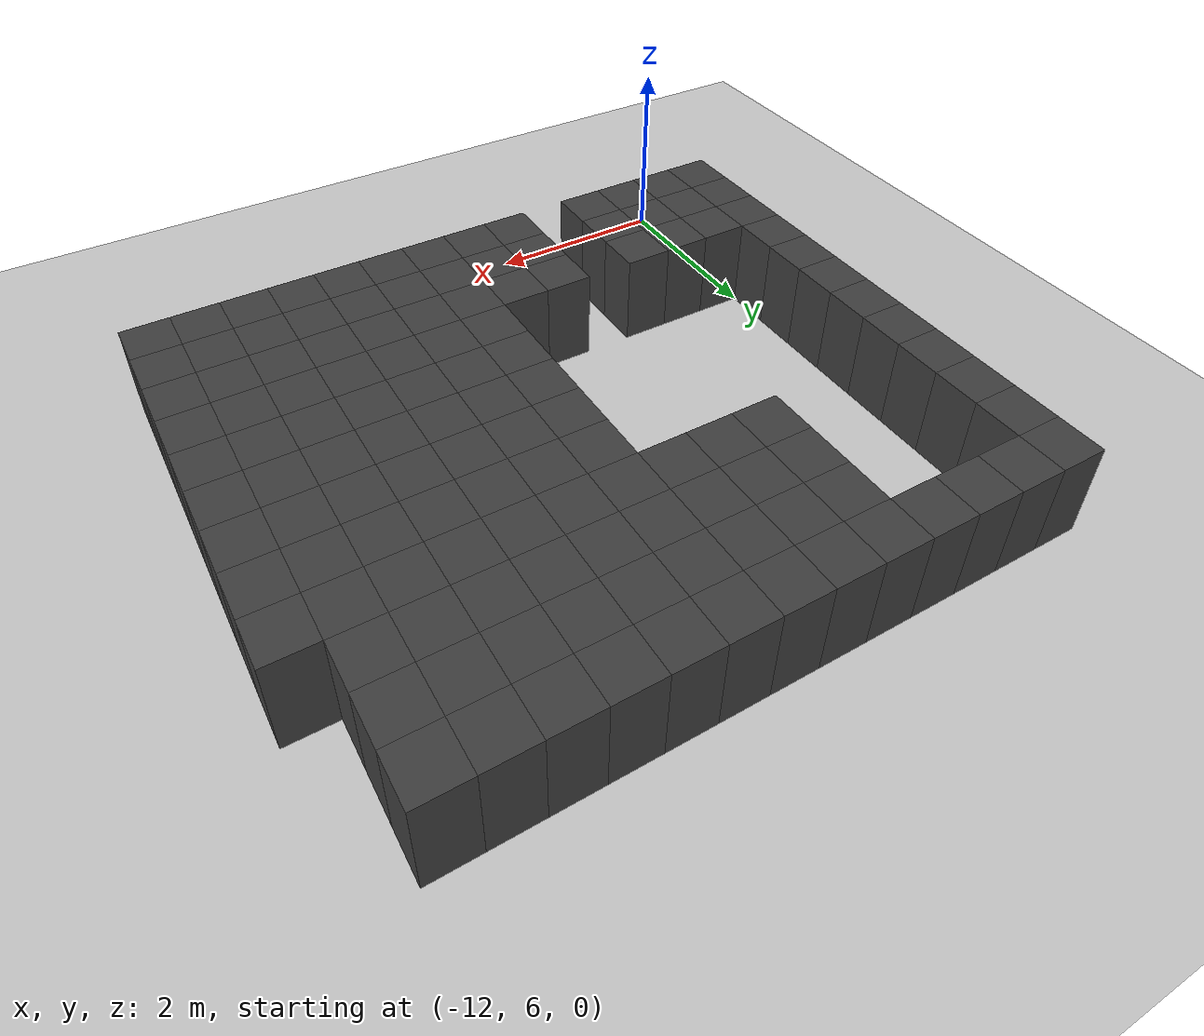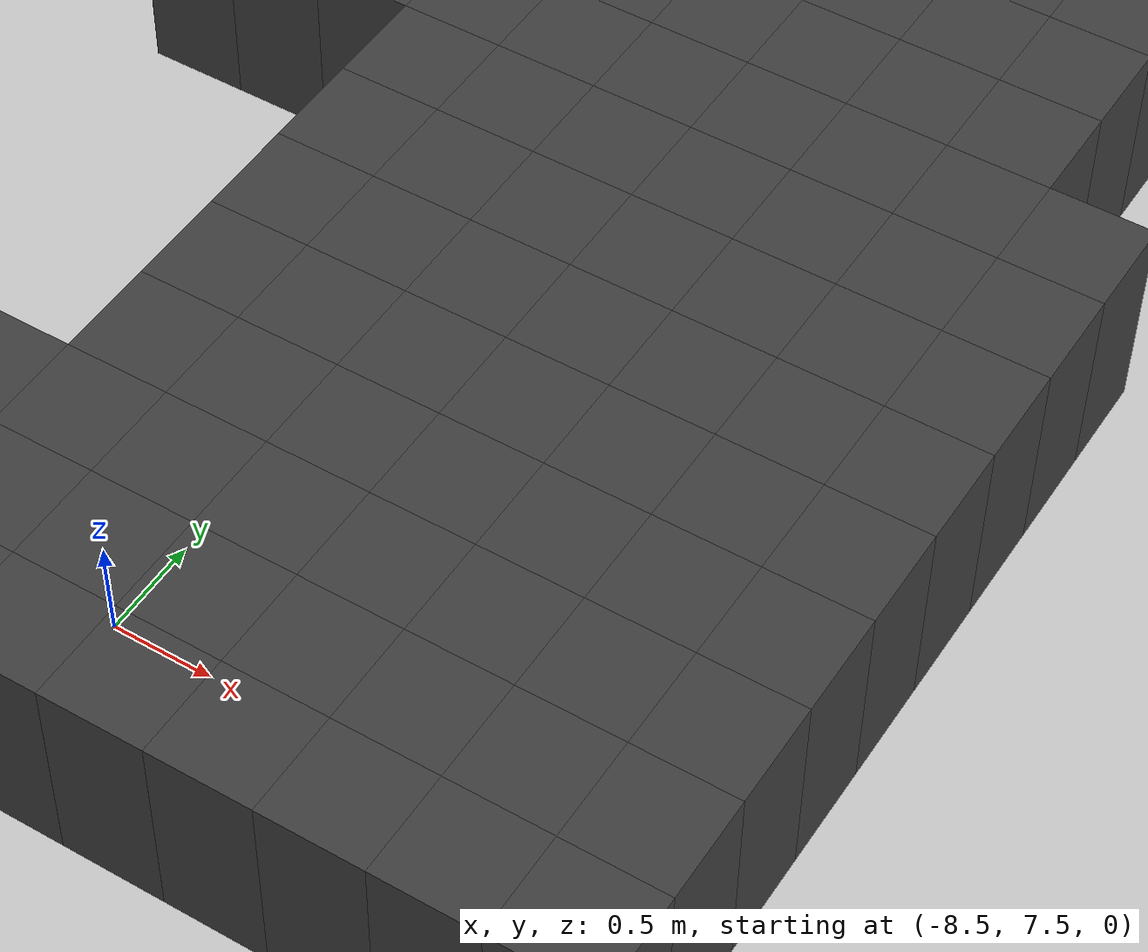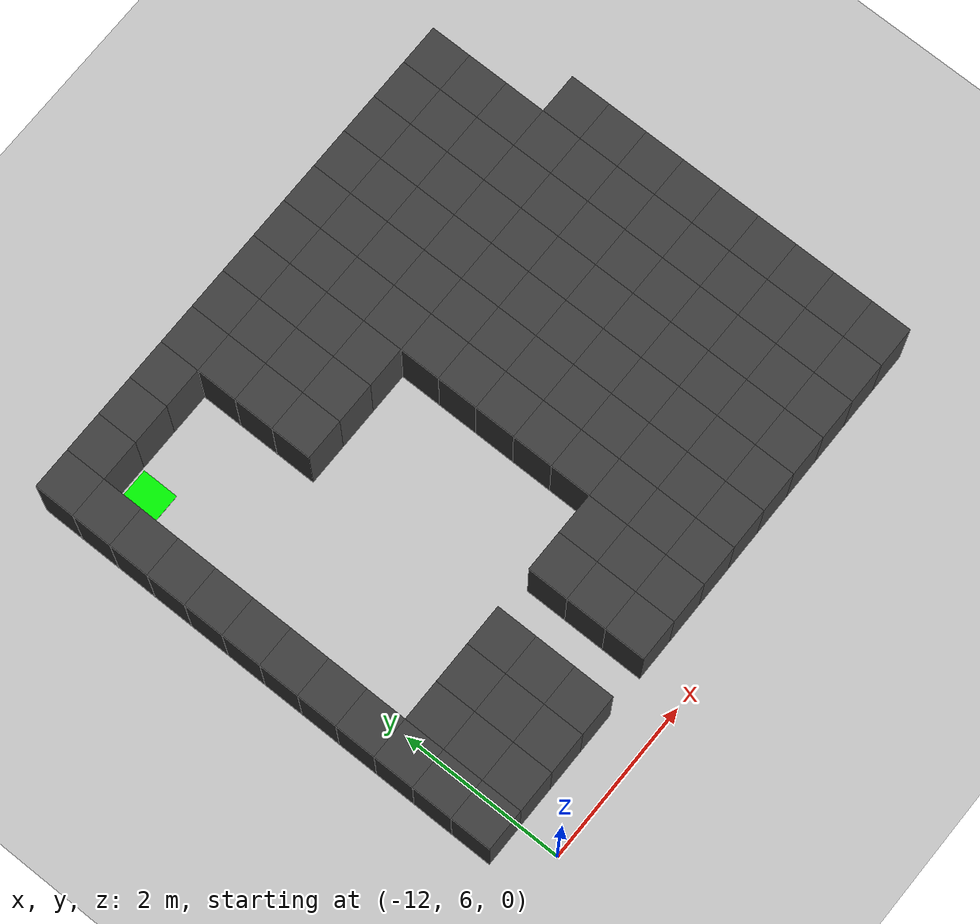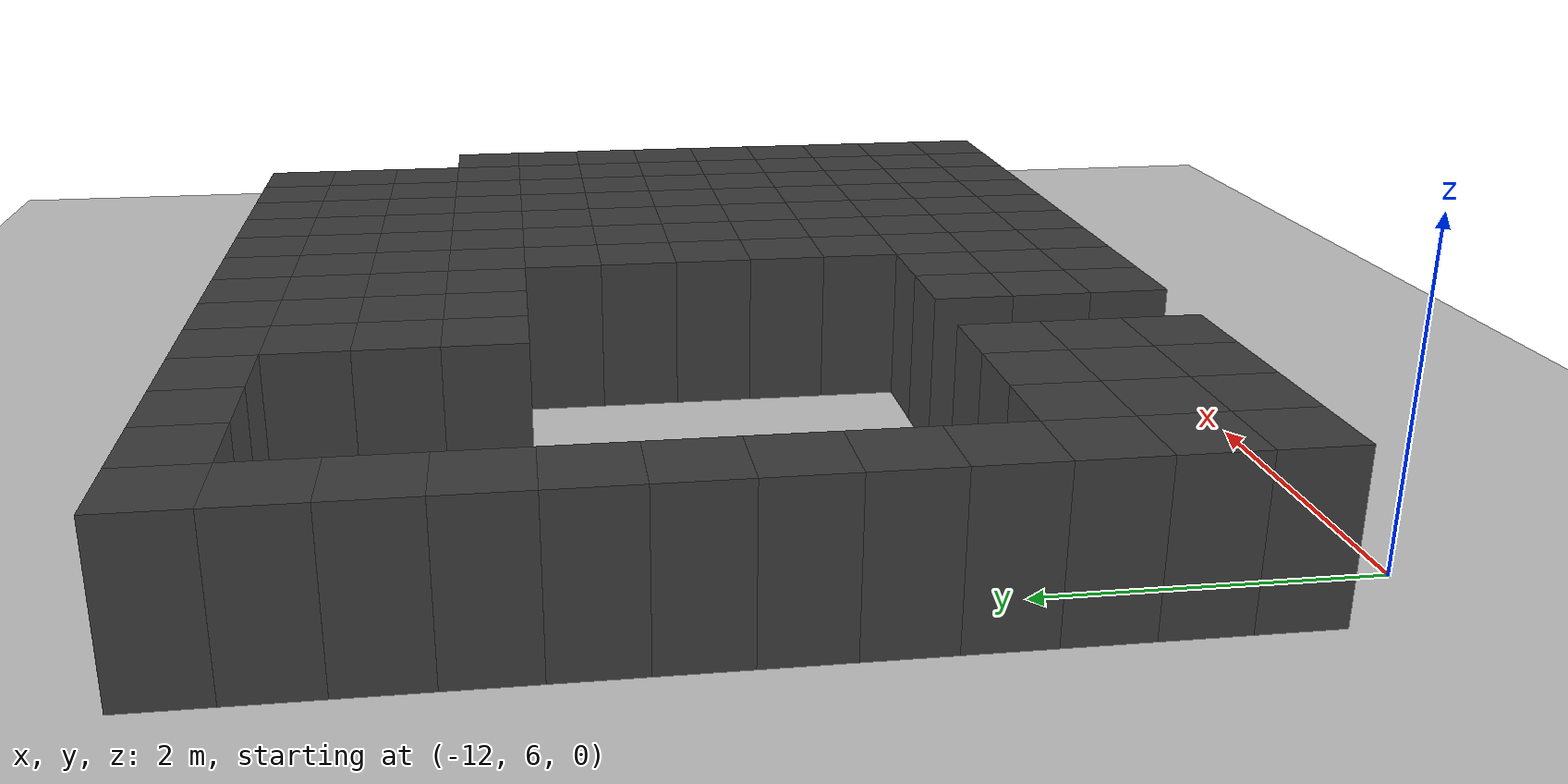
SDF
<sdf version="1.7">
 <world name="map_13364">
  <model name="ground_plane">
   <static>true</static>
   <link name="link">
    <collision name="collision">
     <geometry><plane><normal>0 0 1</normal><size>200 200</size></plane></geometry>
    </collision>
    <visual name="visual">
     <geometry><plane><normal>0 0 1</normal><size>200 200</size></plane></geometry>
     <material><ambient>0.8 0.8 0.8 1</ambient><diffuse>0.8 0.8 0.8 1</diffuse></material>
    </visual>
   </link>
  </model>
  <model name="maze_environment">
   <static>true</static>
   <link name="wall_0">
    <pose>-12.250 12.250 0.500 0 0 0</pose>
    <collision name="col"><geometry><box><size>0.5 0.5 1.0</size></box></geometry></collision>
    <visual name="vis">
     <geometry><box><size>0.5 0.5 1.0</size></box></geometry>
     <material><ambient>0.15 0.15 0.15 1</ambient><diffuse>0.25 0.25 0.25 1</diffuse></material>
    </visual>
   </link>
   <link name="wall_1">
    <pose>-11.750 12.250 0.500 0 0 0</pose>
    <collision name="col"><geometry><box><size>0.5 0.5 1.0</size></box></geometry></collision>
    <visual name="vis">
     <geometry><box><size>0.5 0.5 1.0</size></box></geometry>
     <material><ambient>0.15 0.15 0.15 1</ambient><diffuse>0.25 0.25 0.25 1</diffuse></material>
    </visual>
   </link>
   <link name="wall_2">
    <pose>-11.250 12.250 0.500 0 0 0</pose>
    <collision name="col"><geometry><box><size>0.5 0.5 1.0</size></box></geometry></collision>
    <visual name="vis">
     <geometry><box><size>0.5 0.5 1.0</size></box></geometry>
     <material><ambient>0.15 0.15 0.15 1</ambient><diffuse>0.25 0.25 0.25 1</diffuse></material>
    </visual>
   </link>
   <link name="wall_3">
    <pose>-10.750 12.250 0.500 0 0 0</pose>
    <collision name="col"><geometry><box><size>0.5 0.5 1.0</size></box></geometry></collision>
    <visual name="vis">
     <geometry><box><size>0.5 0.5 1.0</size></box></geometry>
     <material><ambient>0.15 0.15 0.15 1</ambient><diffuse>0.25 0.25 0.25 1</diffuse></material>
    </visual>
   </link>
   <link name="wall_4">
    <pose>-10.250 12.250 0.500 0 0 0</pose>
    <collision name="col"><geometry><box><size>0.5 0.5 1.0</size></box></geometry></collision>
    <visual name="vis">
     <geometry><box><size>0.5 0.5 1.0</size></box></geometry>
     <material><ambient>0.15 0.15 0.15 1</ambient><diffuse>0.25 0.25 0.25 1</diffuse></material>
    </visual>
   </link>
   <link name="wall_5">
    <pose>-9.750 12.250 0.500 0 0 0</pose>
    <collision name="col"><geometry><box><size>0.5 0.5 1.0</size></box></geometry></collision>
    <visual name="vis">
     <geometry><box><size>0.5 0.5 1.0</size></box></geometry>
     <material><ambient>0.15 0.15 0.15 1</ambient><diffuse>0.25 0.25 0.25 1</diffuse></material>
    </visual>
   </link>
   <link name="wall_6">
    <pose>-9.250 12.250 0.500 0 0 0</pose>
    <collision name="col"><geometry><box><size>0.5 0.5 1.0</size></box></geometry></collision>
    <visual name="vis">
     <geometry><box><size>0.5 0.5 1.0</size></box></geometry>
     <material><ambient>0.15 0.15 0.15 1</ambient><diffuse>0.25 0.25 0.25 1</diffuse></material>
    </visual>
   </link>
   <link name="wall_7">
    <pose>-8.750 12.250 0.500 0 0 0</pose>
    <collision name="col"><geometry><box><size>0.5 0.5 1.0</size></box></geometry></collision>
    <visual name="vis">
     <geometry><box><size>0.5 0.5 1.0</size></box></geometry>
     <material><ambient>0.15 0.15 0.15 1</ambient><diffuse>0.25 0.25 0.25 1</diffuse></material>
    </visual>
   </link>
   <link name="wall_8">
    <pose>-8.250 12.250 0.500 0 0 0</pose>
    <collision name="col"><geometry><box><size>0.5 0.5 1.0</size></box></geometry></collision>
    <visual name="vis">
     <geometry><box><size>0.5 0.5 1.0</size></box></geometry>
     <material><ambient>0.15 0.15 0.15 1</ambient><diffuse>0.25 0.25 0.25 1</diffuse></material>
    </visual>
   </link>
   <link name="wall_9">
    <pose>-7.750 12.250 0.500 0 0 0</pose>
    <collision name="col"><geometry><box><size>0.5 0.5 1.0</size></box></geometry></collision>
    <visual name="vis">
     <geometry><box><size>0.5 0.5 1.0</size></box></geometry>
     <material><ambient>0.15 0.15 0.15 1</ambient><diffuse>0.25 0.25 0.25 1</diffuse></material>
    </visual>
   </link>
   <link name="wall_10">
    <pose>-7.250 12.250 0.500 0 0 0</pose>
    <collision name="col"><geometry><box><size>0.5 0.5 1.0</size></box></geometry></collision>
    <visual name="vis">
     <geometry><box><size>0.5 0.5 1.0</size></box></geometry>
     <material><ambient>0.15 0.15 0.15 1</ambient><diffuse>0.25 0.25 0.25 1</diffuse></material>
    </visual>
   </link>
   <link name="wall_11">
    <pose>-6.750 12.250 0.500 0 0 0</pose>
    <collision name="col"><geometry><box><size>0.5 0.5 1.0</size></box></geometry></collision>
    <visual name="vis">
     <geometry><box><size>0.5 0.5 1.0</size></box></geometry>
     <material><ambient>0.15 0.15 0.15 1</ambient><diffuse>0.25 0.25 0.25 1</diffuse></material>
    </visual>
   </link>
   <link name="wall_12">
    <pose>-6.250 12.250 0.500 0 0 0</pose>
    <collision name="col"><geometry><box><size>0.5 0.5 1.0</size></box></geometry></collision>
    <visual name="vis">
     <geometry><box><size>0.5 0.5 1.0</size></box></geometry>
     <material><ambient>0.15 0.15 0.15 1</ambient><diffuse>0.25 0.25 0.25 1</diffuse></material>
    </visual>
   </link>
   <link name="wall_50">
    <pose>-12.250 11.750 0.500 0 0 0</pose>
    <collision name="col"><geometry><box><size>0.5 0.5 1.0</size></box></geometry></collision>
    <visual name="vis">
     <geometry><box><size>0.5 0.5 1.0</size></box></geometry>
     <material><ambient>0.15 0.15 0.15 1</ambient><diffuse>0.25 0.25 0.25 1</diffuse></material>
    </visual>
   </link>
   <link name="wall_51">
    <pose>-10.250 11.750 0.500 0 0 0</pose>
    <collision name="col"><geometry><box><size>0.5 0.5 1.0</size></box></geometry></collision>
    <visual name="vis">
     <geometry><box><size>0.5 0.5 1.0</size></box></geometry>
     <material><ambient>0.15 0.15 0.15 1</ambient><diffuse>0.25 0.25 0.25 1</diffuse></material>
    </visual>
   </link>
   <link name="wall_52">
    <pose>-9.750 11.750 0.500 0 0 0</pose>
    <collision name="col"><geometry><box><size>0.5 0.5 1.0</size></box></geometry></collision>
    <visual name="vis">
     <geometry><box><size>0.5 0.5 1.0</size></box></geometry>
     <material><ambient>0.15 0.15 0.15 1</ambient><diffuse>0.25 0.25 0.25 1</diffuse></material>
    </visual>
   </link>
   <link name="wall_53">
    <pose>-9.250 11.750 0.500 0 0 0</pose>
    <collision name="col"><geometry><box><size>0.5 0.5 1.0</size></box></geometry></collision>
    <visual name="vis">
     <geometry><box><size>0.5 0.5 1.0</size></box></geometry>
     <material><ambient>0.15 0.15 0.15 1</ambient><diffuse>0.25 0.25 0.25 1</diffuse></material>
    </visual>
   </link>
   <link name="wall_54">
    <pose>-8.750 11.750 0.500 0 0 0</pose>
    <collision name="col"><geometry><box><size>0.5 0.5 1.0</size></box></geometry></collision>
    <visual name="vis">
     <geometry><box><size>0.5 0.5 1.0</size></box></geometry>
     <material><ambient>0.15 0.15 0.15 1</ambient><diffuse>0.25 0.25 0.25 1</diffuse></material>
    </visual>
   </link>
   <link name="wall_55">
    <pose>-8.250 11.750 0.500 0 0 0</pose>
    <collision name="col"><geometry><box><size>0.5 0.5 1.0</size></box></geometry></collision>
    <visual name="vis">
     <geometry><box><size>0.5 0.5 1.0</size></box></geometry>
     <material><ambient>0.15 0.15 0.15 1</ambient><diffuse>0.25 0.25 0.25 1</diffuse></material>
    </visual>
   </link>
   <link name="wall_56">
    <pose>-7.750 11.750 0.500 0 0 0</pose>
    <collision name="col"><geometry><box><size>0.5 0.5 1.0</size></box></geometry></collision>
    <visual name="vis">
     <geometry><box><size>0.5 0.5 1.0</size></box></geometry>
     <material><ambient>0.15 0.15 0.15 1</ambient><diffuse>0.25 0.25 0.25 1</diffuse></material>
    </visual>
   </link>
   <link name="wall_57">
    <pose>-7.250 11.750 0.500 0 0 0</pose>
    <collision name="col"><geometry><box><size>0.5 0.5 1.0</size></box></geometry></collision>
    <visual name="vis">
     <geometry><box><size>0.5 0.5 1.0</size></box></geometry>
     <material><ambient>0.15 0.15 0.15 1</ambient><diffuse>0.25 0.25 0.25 1</diffuse></material>
    </visual>
   </link>
   <link name="wall_58">
    <pose>-6.750 11.750 0.500 0 0 0</pose>
    <collision name="col"><geometry><box><size>0.5 0.5 1.0</size></box></geometry></collision>
    <visual name="vis">
     <geometry><box><size>0.5 0.5 1.0</size></box></geometry>
     <material><ambient>0.15 0.15 0.15 1</ambient><diffuse>0.25 0.25 0.25 1</diffuse></material>
    </visual>
   </link>
   <link name="wall_59">
    <pose>-6.250 11.750 0.500 0 0 0</pose>
    <collision name="col"><geometry><box><size>0.5 0.5 1.0</size></box></geometry></collision>
    <visual name="vis">
     <geometry><box><size>0.5 0.5 1.0</size></box></geometry>
     <material><ambient>0.15 0.15 0.15 1</ambient><diffuse>0.25 0.25 0.25 1</diffuse></material>
    </visual>
   </link>
   <link name="wall_97">
    <pose>-12.250 11.250 0.500 0 0 0</pose>
    <collision name="col"><geometry><box><size>0.5 0.5 1.0</size></box></geometry></collision>
    <visual name="vis">
     <geometry><box><size>0.5 0.5 1.0</size></box></geometry>
     <material><ambient>0.15 0.15 0.15 1</ambient><diffuse>0.25 0.25 0.25 1</diffuse></material>
    </visual>
   </link>
   <link name="wall_98">
    <pose>-10.250 11.250 0.500 0 0 0</pose>
    <collision name="col"><geometry><box><size>0.5 0.5 1.0</size></box></geometry></collision>
    <visual name="vis">
     <geometry><box><size>0.5 0.5 1.0</size></box></geometry>
     <material><ambient>0.15 0.15 0.15 1</ambient><diffuse>0.25 0.25 0.25 1</diffuse></material>
    </visual>
   </link>
   <link name="wall_99">
    <pose>-9.750 11.250 0.500 0 0 0</pose>
    <collision name="col"><geometry><box><size>0.5 0.5 1.0</size></box></geometry></collision>
    <visual name="vis">
     <geometry><box><size>0.5 0.5 1.0</size></box></geometry>
     <material><ambient>0.15 0.15 0.15 1</ambient><diffuse>0.25 0.25 0.25 1</diffuse></material>
    </visual>
   </link>
   <link name="wall_100">
    <pose>-9.250 11.250 0.500 0 0 0</pose>
    <collision name="col"><geometry><box><size>0.5 0.5 1.0</size></box></geometry></collision>
    <visual name="vis">
     <geometry><box><size>0.5 0.5 1.0</size></box></geometry>
     <material><ambient>0.15 0.15 0.15 1</ambient><diffuse>0.25 0.25 0.25 1</diffuse></material>
    </visual>
   </link>
   <link name="wall_101">
    <pose>-8.750 11.250 0.500 0 0 0</pose>
    <collision name="col"><geometry><box><size>0.5 0.5 1.0</size></box></geometry></collision>
    <visual name="vis">
     <geometry><box><size>0.5 0.5 1.0</size></box></geometry>
     <material><ambient>0.15 0.15 0.15 1</ambient><diffuse>0.25 0.25 0.25 1</diffuse></material>
    </visual>
   </link>
   <link name="wall_102">
    <pose>-8.250 11.250 0.500 0 0 0</pose>
    <collision name="col"><geometry><box><size>0.5 0.5 1.0</size></box></geometry></collision>
    <visual name="vis">
     <geometry><box><size>0.5 0.5 1.0</size></box></geometry>
     <material><ambient>0.15 0.15 0.15 1</ambient><diffuse>0.25 0.25 0.25 1</diffuse></material>
    </visual>
   </link>
   <link name="wall_103">
    <pose>-7.750 11.250 0.500 0 0 0</pose>
    <collision name="col"><geometry><box><size>0.5 0.5 1.0</size></box></geometry></collision>
    <visual name="vis">
     <geometry><box><size>0.5 0.5 1.0</size></box></geometry>
     <material><ambient>0.15 0.15 0.15 1</ambient><diffuse>0.25 0.25 0.25 1</diffuse></material>
    </visual>
   </link>
   <link name="wall_104">
    <pose>-7.250 11.250 0.500 0 0 0</pose>
    <collision name="col"><geometry><box><size>0.5 0.5 1.0</size></box></geometry></collision>
    <visual name="vis">
     <geometry><box><size>0.5 0.5 1.0</size></box></geometry>
     <material><ambient>0.15 0.15 0.15 1</ambient><diffuse>0.25 0.25 0.25 1</diffuse></material>
    </visual>
   </link>
   <link name="wall_105">
    <pose>-6.750 11.250 0.500 0 0 0</pose>
    <collision name="col"><geometry><box><size>0.5 0.5 1.0</size></box></geometry></collision>
    <visual name="vis">
     <geometry><box><size>0.5 0.5 1.0</size></box></geometry>
     <material><ambient>0.15 0.15 0.15 1</ambient><diffuse>0.25 0.25 0.25 1</diffuse></material>
    </visual>
   </link>
   <link name="wall_106">
    <pose>-6.250 11.250 0.500 0 0 0</pose>
    <collision name="col"><geometry><box><size>0.5 0.5 1.0</size></box></geometry></collision>
    <visual name="vis">
     <geometry><box><size>0.5 0.5 1.0</size></box></geometry>
     <material><ambient>0.15 0.15 0.15 1</ambient><diffuse>0.25 0.25 0.25 1</diffuse></material>
    </visual>
   </link>
   <link name="wall_144">
    <pose>-12.250 10.750 0.500 0 0 0</pose>
    <collision name="col"><geometry><box><size>0.5 0.5 1.0</size></box></geometry></collision>
    <visual name="vis">
     <geometry><box><size>0.5 0.5 1.0</size></box></geometry>
     <material><ambient>0.15 0.15 0.15 1</ambient><diffuse>0.25 0.25 0.25 1</diffuse></material>
    </visual>
   </link>
   <link name="wall_145">
    <pose>-10.250 10.750 0.500 0 0 0</pose>
    <collision name="col"><geometry><box><size>0.5 0.5 1.0</size></box></geometry></collision>
    <visual name="vis">
     <geometry><box><size>0.5 0.5 1.0</size></box></geometry>
     <material><ambient>0.15 0.15 0.15 1</ambient><diffuse>0.25 0.25 0.25 1</diffuse></material>
    </visual>
   </link>
   <link name="wall_146">
    <pose>-9.750 10.750 0.500 0 0 0</pose>
    <collision name="col"><geometry><box><size>0.5 0.5 1.0</size></box></geometry></collision>
    <visual name="vis">
     <geometry><box><size>0.5 0.5 1.0</size></box></geometry>
     <material><ambient>0.15 0.15 0.15 1</ambient><diffuse>0.25 0.25 0.25 1</diffuse></material>
    </visual>
   </link>
   <link name="wall_147">
    <pose>-9.250 10.750 0.500 0 0 0</pose>
    <collision name="col"><geometry><box><size>0.5 0.5 1.0</size></box></geometry></collision>
    <visual name="vis">
     <geometry><box><size>0.5 0.5 1.0</size></box></geometry>
     <material><ambient>0.15 0.15 0.15 1</ambient><diffuse>0.25 0.25 0.25 1</diffuse></material>
    </visual>
   </link>
   <link name="wall_148">
    <pose>-8.750 10.750 0.500 0 0 0</pose>
    <collision name="col"><geometry><box><size>0.5 0.5 1.0</size></box></geometry></collision>
    <visual name="vis">
     <geometry><box><size>0.5 0.5 1.0</size></box></geometry>
     <material><ambient>0.15 0.15 0.15 1</ambient><diffuse>0.25 0.25 0.25 1</diffuse></material>
    </visual>
   </link>
   <link name="wall_149">
    <pose>-8.250 10.750 0.500 0 0 0</pose>
    <collision name="col"><geometry><box><size>0.5 0.5 1.0</size></box></geometry></collision>
    <visual name="vis">
     <geometry><box><size>0.5 0.5 1.0</size></box></geometry>
     <material><ambient>0.15 0.15 0.15 1</ambient><diffuse>0.25 0.25 0.25 1</diffuse></material>
    </visual>
   </link>
   <link name="wall_150">
    <pose>-7.750 10.750 0.500 0 0 0</pose>
    <collision name="col"><geometry><box><size>0.5 0.5 1.0</size></box></geometry></collision>
    <visual name="vis">
     <geometry><box><size>0.5 0.5 1.0</size></box></geometry>
     <material><ambient>0.15 0.15 0.15 1</ambient><diffuse>0.25 0.25 0.25 1</diffuse></material>
    </visual>
   </link>
   <link name="wall_151">
    <pose>-7.250 10.750 0.500 0 0 0</pose>
    <collision name="col"><geometry><box><size>0.5 0.5 1.0</size></box></geometry></collision>
    <visual name="vis">
     <geometry><box><size>0.5 0.5 1.0</size></box></geometry>
     <material><ambient>0.15 0.15 0.15 1</ambient><diffuse>0.25 0.25 0.25 1</diffuse></material>
    </visual>
   </link>
   <link name="wall_152">
    <pose>-6.750 10.750 0.500 0 0 0</pose>
    <collision name="col"><geometry><box><size>0.5 0.5 1.0</size></box></geometry></collision>
    <visual name="vis">
     <geometry><box><size>0.5 0.5 1.0</size></box></geometry>
     <material><ambient>0.15 0.15 0.15 1</ambient><diffuse>0.25 0.25 0.25 1</diffuse></material>
    </visual>
   </link>
   <link name="wall_153">
    <pose>-6.250 10.750 0.500 0 0 0</pose>
    <collision name="col"><geometry><box><size>0.5 0.5 1.0</size></box></geometry></collision>
    <visual name="vis">
     <geometry><box><size>0.5 0.5 1.0</size></box></geometry>
     <material><ambient>0.15 0.15 0.15 1</ambient><diffuse>0.25 0.25 0.25 1</diffuse></material>
    </visual>
   </link>
   <link name="wall_154">
    <pose>-5.750 10.750 0.500 0 0 0</pose>
    <collision name="col"><geometry><box><size>0.5 0.5 1.0</size></box></geometry></collision>
    <visual name="vis">
     <geometry><box><size>0.5 0.5 1.0</size></box></geometry>
     <material><ambient>0.15 0.15 0.15 1</ambient><diffuse>0.25 0.25 0.25 1</diffuse></material>
    </visual>
   </link>
   <link name="wall_191">
    <pose>-12.250 10.250 0.500 0 0 0</pose>
    <collision name="col"><geometry><box><size>0.5 0.5 1.0</size></box></geometry></collision>
    <visual name="vis">
     <geometry><box><size>0.5 0.5 1.0</size></box></geometry>
     <material><ambient>0.15 0.15 0.15 1</ambient><diffuse>0.25 0.25 0.25 1</diffuse></material>
    </visual>
   </link>
   <link name="wall_192">
    <pose>-8.750 10.250 0.500 0 0 0</pose>
    <collision name="col"><geometry><box><size>0.5 0.5 1.0</size></box></geometry></collision>
    <visual name="vis">
     <geometry><box><size>0.5 0.5 1.0</size></box></geometry>
     <material><ambient>0.15 0.15 0.15 1</ambient><diffuse>0.25 0.25 0.25 1</diffuse></material>
    </visual>
   </link>
   <link name="wall_193">
    <pose>-8.250 10.250 0.500 0 0 0</pose>
    <collision name="col"><geometry><box><size>0.5 0.5 1.0</size></box></geometry></collision>
    <visual name="vis">
     <geometry><box><size>0.5 0.5 1.0</size></box></geometry>
     <material><ambient>0.15 0.15 0.15 1</ambient><diffuse>0.25 0.25 0.25 1</diffuse></material>
    </visual>
   </link>
   <link name="wall_194">
    <pose>-7.750 10.250 0.500 0 0 0</pose>
    <collision name="col"><geometry><box><size>0.5 0.5 1.0</size></box></geometry></collision>
    <visual name="vis">
     <geometry><box><size>0.5 0.5 1.0</size></box></geometry>
     <material><ambient>0.15 0.15 0.15 1</ambient><diffuse>0.25 0.25 0.25 1</diffuse></material>
    </visual>
   </link>
   <link name="wall_195">
    <pose>-7.250 10.250 0.500 0 0 0</pose>
    <collision name="col"><geometry><box><size>0.5 0.5 1.0</size></box></geometry></collision>
    <visual name="vis">
     <geometry><box><size>0.5 0.5 1.0</size></box></geometry>
     <material><ambient>0.15 0.15 0.15 1</ambient><diffuse>0.25 0.25 0.25 1</diffuse></material>
    </visual>
   </link>
   <link name="wall_196">
    <pose>-6.750 10.250 0.500 0 0 0</pose>
    <collision name="col"><geometry><box><size>0.5 0.5 1.0</size></box></geometry></collision>
    <visual name="vis">
     <geometry><box><size>0.5 0.5 1.0</size></box></geometry>
     <material><ambient>0.15 0.15 0.15 1</ambient><diffuse>0.25 0.25 0.25 1</diffuse></material>
    </visual>
   </link>
   <link name="wall_197">
    <pose>-6.250 10.250 0.500 0 0 0</pose>
    <collision name="col"><geometry><box><size>0.5 0.5 1.0</size></box></geometry></collision>
    <visual name="vis">
     <geometry><box><size>0.5 0.5 1.0</size></box></geometry>
     <material><ambient>0.15 0.15 0.15 1</ambient><diffuse>0.25 0.25 0.25 1</diffuse></material>
    </visual>
   </link>
   <link name="wall_198">
    <pose>-5.750 10.250 0.500 0 0 0</pose>
    <collision name="col"><geometry><box><size>0.5 0.5 1.0</size></box></geometry></collision>
    <visual name="vis">
     <geometry><box><size>0.5 0.5 1.0</size></box></geometry>
     <material><ambient>0.15 0.15 0.15 1</ambient><diffuse>0.25 0.25 0.25 1</diffuse></material>
    </visual>
   </link>
   <link name="wall_235">
    <pose>-12.250 9.750 0.500 0 0 0</pose>
    <collision name="col"><geometry><box><size>0.5 0.5 1.0</size></box></geometry></collision>
    <visual name="vis">
     <geometry><box><size>0.5 0.5 1.0</size></box></geometry>
     <material><ambient>0.15 0.15 0.15 1</ambient><diffuse>0.25 0.25 0.25 1</diffuse></material>
    </visual>
   </link>
   <link name="wall_236">
    <pose>-8.750 9.750 0.500 0 0 0</pose>
    <collision name="col"><geometry><box><size>0.5 0.5 1.0</size></box></geometry></collision>
    <visual name="vis">
     <geometry><box><size>0.5 0.5 1.0</size></box></geometry>
     <material><ambient>0.15 0.15 0.15 1</ambient><diffuse>0.25 0.25 0.25 1</diffuse></material>
    </visual>
   </link>
   <link name="wall_237">
    <pose>-8.250 9.750 0.500 0 0 0</pose>
    <collision name="col"><geometry><box><size>0.5 0.5 1.0</size></box></geometry></collision>
    <visual name="vis">
     <geometry><box><size>0.5 0.5 1.0</size></box></geometry>
     <material><ambient>0.15 0.15 0.15 1</ambient><diffuse>0.25 0.25 0.25 1</diffuse></material>
    </visual>
   </link>
   <link name="wall_238">
    <pose>-7.750 9.750 0.500 0 0 0</pose>
    <collision name="col"><geometry><box><size>0.5 0.5 1.0</size></box></geometry></collision>
    <visual name="vis">
     <geometry><box><size>0.5 0.5 1.0</size></box></geometry>
     <material><ambient>0.15 0.15 0.15 1</ambient><diffuse>0.25 0.25 0.25 1</diffuse></material>
    </visual>
   </link>
   <link name="wall_239">
    <pose>-7.250 9.750 0.500 0 0 0</pose>
    <collision name="col"><geometry><box><size>0.5 0.5 1.0</size></box></geometry></collision>
    <visual name="vis">
     <geometry><box><size>0.5 0.5 1.0</size></box></geometry>
     <material><ambient>0.15 0.15 0.15 1</ambient><diffuse>0.25 0.25 0.25 1</diffuse></material>
    </visual>
   </link>
   <link name="wall_240">
    <pose>-6.750 9.750 0.500 0 0 0</pose>
    <collision name="col"><geometry><box><size>0.5 0.5 1.0</size></box></geometry></collision>
    <visual name="vis">
     <geometry><box><size>0.5 0.5 1.0</size></box></geometry>
     <material><ambient>0.15 0.15 0.15 1</ambient><diffuse>0.25 0.25 0.25 1</diffuse></material>
    </visual>
   </link>
   <link name="wall_241">
    <pose>-6.250 9.750 0.500 0 0 0</pose>
    <collision name="col"><geometry><box><size>0.5 0.5 1.0</size></box></geometry></collision>
    <visual name="vis">
     <geometry><box><size>0.5 0.5 1.0</size></box></geometry>
     <material><ambient>0.15 0.15 0.15 1</ambient><diffuse>0.25 0.25 0.25 1</diffuse></material>
    </visual>
   </link>
   <link name="wall_242">
    <pose>-5.750 9.750 0.500 0 0 0</pose>
    <collision name="col"><geometry><box><size>0.5 0.5 1.0</size></box></geometry></collision>
    <visual name="vis">
     <geometry><box><size>0.5 0.5 1.0</size></box></geometry>
     <material><ambient>0.15 0.15 0.15 1</ambient><diffuse>0.25 0.25 0.25 1</diffuse></material>
    </visual>
   </link>
   <link name="wall_279">
    <pose>-12.250 9.250 0.500 0 0 0</pose>
    <collision name="col"><geometry><box><size>0.5 0.5 1.0</size></box></geometry></collision>
    <visual name="vis">
     <geometry><box><size>0.5 0.5 1.0</size></box></geometry>
     <material><ambient>0.15 0.15 0.15 1</ambient><diffuse>0.25 0.25 0.25 1</diffuse></material>
    </visual>
   </link>
   <link name="wall_280">
    <pose>-8.750 9.250 0.500 0 0 0</pose>
    <collision name="col"><geometry><box><size>0.5 0.5 1.0</size></box></geometry></collision>
    <visual name="vis">
     <geometry><box><size>0.5 0.5 1.0</size></box></geometry>
     <material><ambient>0.15 0.15 0.15 1</ambient><diffuse>0.25 0.25 0.25 1</diffuse></material>
    </visual>
   </link>
   <link name="wall_281">
    <pose>-8.250 9.250 0.500 0 0 0</pose>
    <collision name="col"><geometry><box><size>0.5 0.5 1.0</size></box></geometry></collision>
    <visual name="vis">
     <geometry><box><size>0.5 0.5 1.0</size></box></geometry>
     <material><ambient>0.15 0.15 0.15 1</ambient><diffuse>0.25 0.25 0.25 1</diffuse></material>
    </visual>
   </link>
   <link name="wall_282">
    <pose>-7.750 9.250 0.500 0 0 0</pose>
    <collision name="col"><geometry><box><size>0.5 0.5 1.0</size></box></geometry></collision>
    <visual name="vis">
     <geometry><box><size>0.5 0.5 1.0</size></box></geometry>
     <material><ambient>0.15 0.15 0.15 1</ambient><diffuse>0.25 0.25 0.25 1</diffuse></material>
    </visual>
   </link>
   <link name="wall_283">
    <pose>-7.250 9.250 0.500 0 0 0</pose>
    <collision name="col"><geometry><box><size>0.5 0.5 1.0</size></box></geometry></collision>
    <visual name="vis">
     <geometry><box><size>0.5 0.5 1.0</size></box></geometry>
     <material><ambient>0.15 0.15 0.15 1</ambient><diffuse>0.25 0.25 0.25 1</diffuse></material>
    </visual>
   </link>
   <link name="wall_284">
    <pose>-6.750 9.250 0.500 0 0 0</pose>
    <collision name="col"><geometry><box><size>0.5 0.5 1.0</size></box></geometry></collision>
    <visual name="vis">
     <geometry><box><size>0.5 0.5 1.0</size></box></geometry>
     <material><ambient>0.15 0.15 0.15 1</ambient><diffuse>0.25 0.25 0.25 1</diffuse></material>
    </visual>
   </link>
   <link name="wall_285">
    <pose>-6.250 9.250 0.500 0 0 0</pose>
    <collision name="col"><geometry><box><size>0.5 0.5 1.0</size></box></geometry></collision>
    <visual name="vis">
     <geometry><box><size>0.5 0.5 1.0</size></box></geometry>
     <material><ambient>0.15 0.15 0.15 1</ambient><diffuse>0.25 0.25 0.25 1</diffuse></material>
    </visual>
   </link>
   <link name="wall_286">
    <pose>-5.750 9.250 0.500 0 0 0</pose>
    <collision name="col"><geometry><box><size>0.5 0.5 1.0</size></box></geometry></collision>
    <visual name="vis">
     <geometry><box><size>0.5 0.5 1.0</size></box></geometry>
     <material><ambient>0.15 0.15 0.15 1</ambient><diffuse>0.25 0.25 0.25 1</diffuse></material>
    </visual>
   </link>
   <link name="wall_323">
    <pose>-12.250 8.750 0.500 0 0 0</pose>
    <collision name="col"><geometry><box><size>0.5 0.5 1.0</size></box></geometry></collision>
    <visual name="vis">
     <geometry><box><size>0.5 0.5 1.0</size></box></geometry>
     <material><ambient>0.15 0.15 0.15 1</ambient><diffuse>0.25 0.25 0.25 1</diffuse></material>
    </visual>
   </link>
   <link name="wall_324">
    <pose>-8.750 8.750 0.500 0 0 0</pose>
    <collision name="col"><geometry><box><size>0.5 0.5 1.0</size></box></geometry></collision>
    <visual name="vis">
     <geometry><box><size>0.5 0.5 1.0</size></box></geometry>
     <material><ambient>0.15 0.15 0.15 1</ambient><diffuse>0.25 0.25 0.25 1</diffuse></material>
    </visual>
   </link>
   <link name="wall_325">
    <pose>-8.250 8.750 0.500 0 0 0</pose>
    <collision name="col"><geometry><box><size>0.5 0.5 1.0</size></box></geometry></collision>
    <visual name="vis">
     <geometry><box><size>0.5 0.5 1.0</size></box></geometry>
     <material><ambient>0.15 0.15 0.15 1</ambient><diffuse>0.25 0.25 0.25 1</diffuse></material>
    </visual>
   </link>
   <link name="wall_326">
    <pose>-7.750 8.750 0.500 0 0 0</pose>
    <collision name="col"><geometry><box><size>0.5 0.5 1.0</size></box></geometry></collision>
    <visual name="vis">
     <geometry><box><size>0.5 0.5 1.0</size></box></geometry>
     <material><ambient>0.15 0.15 0.15 1</ambient><diffuse>0.25 0.25 0.25 1</diffuse></material>
    </visual>
   </link>
   <link name="wall_327">
    <pose>-7.250 8.750 0.500 0 0 0</pose>
    <collision name="col"><geometry><box><size>0.5 0.5 1.0</size></box></geometry></collision>
    <visual name="vis">
     <geometry><box><size>0.5 0.5 1.0</size></box></geometry>
     <material><ambient>0.15 0.15 0.15 1</ambient><diffuse>0.25 0.25 0.25 1</diffuse></material>
    </visual>
   </link>
   <link name="wall_328">
    <pose>-6.750 8.750 0.500 0 0 0</pose>
    <collision name="col"><geometry><box><size>0.5 0.5 1.0</size></box></geometry></collision>
    <visual name="vis">
     <geometry><box><size>0.5 0.5 1.0</size></box></geometry>
     <material><ambient>0.15 0.15 0.15 1</ambient><diffuse>0.25 0.25 0.25 1</diffuse></material>
    </visual>
   </link>
   <link name="wall_329">
    <pose>-6.250 8.750 0.500 0 0 0</pose>
    <collision name="col"><geometry><box><size>0.5 0.5 1.0</size></box></geometry></collision>
    <visual name="vis">
     <geometry><box><size>0.5 0.5 1.0</size></box></geometry>
     <material><ambient>0.15 0.15 0.15 1</ambient><diffuse>0.25 0.25 0.25 1</diffuse></material>
    </visual>
   </link>
   <link name="wall_330">
    <pose>-5.750 8.750 0.500 0 0 0</pose>
    <collision name="col"><geometry><box><size>0.5 0.5 1.0</size></box></geometry></collision>
    <visual name="vis">
     <geometry><box><size>0.5 0.5 1.0</size></box></geometry>
     <material><ambient>0.15 0.15 0.15 1</ambient><diffuse>0.25 0.25 0.25 1</diffuse></material>
    </visual>
   </link>
   <link name="wall_367">
    <pose>-12.250 8.250 0.500 0 0 0</pose>
    <collision name="col"><geometry><box><size>0.5 0.5 1.0</size></box></geometry></collision>
    <visual name="vis">
     <geometry><box><size>0.5 0.5 1.0</size></box></geometry>
     <material><ambient>0.15 0.15 0.15 1</ambient><diffuse>0.25 0.25 0.25 1</diffuse></material>
    </visual>
   </link>
   <link name="wall_368">
    <pose>-8.750 8.250 0.500 0 0 0</pose>
    <collision name="col"><geometry><box><size>0.5 0.5 1.0</size></box></geometry></collision>
    <visual name="vis">
     <geometry><box><size>0.5 0.5 1.0</size></box></geometry>
     <material><ambient>0.15 0.15 0.15 1</ambient><diffuse>0.25 0.25 0.25 1</diffuse></material>
    </visual>
   </link>
   <link name="wall_369">
    <pose>-8.250 8.250 0.500 0 0 0</pose>
    <collision name="col"><geometry><box><size>0.5 0.5 1.0</size></box></geometry></collision>
    <visual name="vis">
     <geometry><box><size>0.5 0.5 1.0</size></box></geometry>
     <material><ambient>0.15 0.15 0.15 1</ambient><diffuse>0.25 0.25 0.25 1</diffuse></material>
    </visual>
   </link>
   <link name="wall_370">
    <pose>-7.750 8.250 0.500 0 0 0</pose>
    <collision name="col"><geometry><box><size>0.5 0.5 1.0</size></box></geometry></collision>
    <visual name="vis">
     <geometry><box><size>0.5 0.5 1.0</size></box></geometry>
     <material><ambient>0.15 0.15 0.15 1</ambient><diffuse>0.25 0.25 0.25 1</diffuse></material>
    </visual>
   </link>
   <link name="wall_371">
    <pose>-7.250 8.250 0.500 0 0 0</pose>
    <collision name="col"><geometry><box><size>0.5 0.5 1.0</size></box></geometry></collision>
    <visual name="vis">
     <geometry><box><size>0.5 0.5 1.0</size></box></geometry>
     <material><ambient>0.15 0.15 0.15 1</ambient><diffuse>0.25 0.25 0.25 1</diffuse></material>
    </visual>
   </link>
   <link name="wall_372">
    <pose>-6.750 8.250 0.500 0 0 0</pose>
    <collision name="col"><geometry><box><size>0.5 0.5 1.0</size></box></geometry></collision>
    <visual name="vis">
     <geometry><box><size>0.5 0.5 1.0</size></box></geometry>
     <material><ambient>0.15 0.15 0.15 1</ambient><diffuse>0.25 0.25 0.25 1</diffuse></material>
    </visual>
   </link>
   <link name="wall_373">
    <pose>-6.250 8.250 0.500 0 0 0</pose>
    <collision name="col"><geometry><box><size>0.5 0.5 1.0</size></box></geometry></collision>
    <visual name="vis">
     <geometry><box><size>0.5 0.5 1.0</size></box></geometry>
     <material><ambient>0.15 0.15 0.15 1</ambient><diffuse>0.25 0.25 0.25 1</diffuse></material>
    </visual>
   </link>
   <link name="wall_374">
    <pose>-5.750 8.250 0.500 0 0 0</pose>
    <collision name="col"><geometry><box><size>0.5 0.5 1.0</size></box></geometry></collision>
    <visual name="vis">
     <geometry><box><size>0.5 0.5 1.0</size></box></geometry>
     <material><ambient>0.15 0.15 0.15 1</ambient><diffuse>0.25 0.25 0.25 1</diffuse></material>
    </visual>
   </link>
   <link name="wall_411">
    <pose>-12.250 7.750 0.500 0 0 0</pose>
    <collision name="col"><geometry><box><size>0.5 0.5 1.0</size></box></geometry></collision>
    <visual name="vis">
     <geometry><box><size>0.5 0.5 1.0</size></box></geometry>
     <material><ambient>0.15 0.15 0.15 1</ambient><diffuse>0.25 0.25 0.25 1</diffuse></material>
    </visual>
   </link>
   <link name="wall_412">
    <pose>-11.750 7.750 0.500 0 0 0</pose>
    <collision name="col"><geometry><box><size>0.5 0.5 1.0</size></box></geometry></collision>
    <visual name="vis">
     <geometry><box><size>0.5 0.5 1.0</size></box></geometry>
     <material><ambient>0.15 0.15 0.15 1</ambient><diffuse>0.25 0.25 0.25 1</diffuse></material>
    </visual>
   </link>
   <link name="wall_413">
    <pose>-11.250 7.750 0.500 0 0 0</pose>
    <collision name="col"><geometry><box><size>0.5 0.5 1.0</size></box></geometry></collision>
    <visual name="vis">
     <geometry><box><size>0.5 0.5 1.0</size></box></geometry>
     <material><ambient>0.15 0.15 0.15 1</ambient><diffuse>0.25 0.25 0.25 1</diffuse></material>
    </visual>
   </link>
   <link name="wall_414">
    <pose>-10.750 7.750 0.500 0 0 0</pose>
    <collision name="col"><geometry><box><size>0.5 0.5 1.0</size></box></geometry></collision>
    <visual name="vis">
     <geometry><box><size>0.5 0.5 1.0</size></box></geometry>
     <material><ambient>0.15 0.15 0.15 1</ambient><diffuse>0.25 0.25 0.25 1</diffuse></material>
    </visual>
   </link>
   <link name="wall_415">
    <pose>-9.750 7.750 0.500 0 0 0</pose>
    <collision name="col"><geometry><box><size>0.5 0.5 1.0</size></box></geometry></collision>
    <visual name="vis">
     <geometry><box><size>0.5 0.5 1.0</size></box></geometry>
     <material><ambient>0.15 0.15 0.15 1</ambient><diffuse>0.25 0.25 0.25 1</diffuse></material>
    </visual>
   </link>
   <link name="wall_416">
    <pose>-9.250 7.750 0.500 0 0 0</pose>
    <collision name="col"><geometry><box><size>0.5 0.5 1.0</size></box></geometry></collision>
    <visual name="vis">
     <geometry><box><size>0.5 0.5 1.0</size></box></geometry>
     <material><ambient>0.15 0.15 0.15 1</ambient><diffuse>0.25 0.25 0.25 1</diffuse></material>
    </visual>
   </link>
   <link name="wall_417">
    <pose>-8.750 7.750 0.500 0 0 0</pose>
    <collision name="col"><geometry><box><size>0.5 0.5 1.0</size></box></geometry></collision>
    <visual name="vis">
     <geometry><box><size>0.5 0.5 1.0</size></box></geometry>
     <material><ambient>0.15 0.15 0.15 1</ambient><diffuse>0.25 0.25 0.25 1</diffuse></material>
    </visual>
   </link>
   <link name="wall_418">
    <pose>-8.250 7.750 0.500 0 0 0</pose>
    <collision name="col"><geometry><box><size>0.5 0.5 1.0</size></box></geometry></collision>
    <visual name="vis">
     <geometry><box><size>0.5 0.5 1.0</size></box></geometry>
     <material><ambient>0.15 0.15 0.15 1</ambient><diffuse>0.25 0.25 0.25 1</diffuse></material>
    </visual>
   </link>
   <link name="wall_419">
    <pose>-7.750 7.750 0.500 0 0 0</pose>
    <collision name="col"><geometry><box><size>0.5 0.5 1.0</size></box></geometry></collision>
    <visual name="vis">
     <geometry><box><size>0.5 0.5 1.0</size></box></geometry>
     <material><ambient>0.15 0.15 0.15 1</ambient><diffuse>0.25 0.25 0.25 1</diffuse></material>
    </visual>
   </link>
   <link name="wall_420">
    <pose>-7.250 7.750 0.500 0 0 0</pose>
    <collision name="col"><geometry><box><size>0.5 0.5 1.0</size></box></geometry></collision>
    <visual name="vis">
     <geometry><box><size>0.5 0.5 1.0</size></box></geometry>
     <material><ambient>0.15 0.15 0.15 1</ambient><diffuse>0.25 0.25 0.25 1</diffuse></material>
    </visual>
   </link>
   <link name="wall_421">
    <pose>-6.750 7.750 0.500 0 0 0</pose>
    <collision name="col"><geometry><box><size>0.5 0.5 1.0</size></box></geometry></collision>
    <visual name="vis">
     <geometry><box><size>0.5 0.5 1.0</size></box></geometry>
     <material><ambient>0.15 0.15 0.15 1</ambient><diffuse>0.25 0.25 0.25 1</diffuse></material>
    </visual>
   </link>
   <link name="wall_422">
    <pose>-6.250 7.750 0.500 0 0 0</pose>
    <collision name="col"><geometry><box><size>0.5 0.5 1.0</size></box></geometry></collision>
    <visual name="vis">
     <geometry><box><size>0.5 0.5 1.0</size></box></geometry>
     <material><ambient>0.15 0.15 0.15 1</ambient><diffuse>0.25 0.25 0.25 1</diffuse></material>
    </visual>
   </link>
   <link name="wall_423">
    <pose>-5.750 7.750 0.500 0 0 0</pose>
    <collision name="col"><geometry><box><size>0.5 0.5 1.0</size></box></geometry></collision>
    <visual name="vis">
     <geometry><box><size>0.5 0.5 1.0</size></box></geometry>
     <material><ambient>0.15 0.15 0.15 1</ambient><diffuse>0.25 0.25 0.25 1</diffuse></material>
    </visual>
   </link>
   <link name="wall_460">
    <pose>-12.250 7.250 0.500 0 0 0</pose>
    <collision name="col"><geometry><box><size>0.5 0.5 1.0</size></box></geometry></collision>
    <visual name="vis">
     <geometry><box><size>0.5 0.5 1.0</size></box></geometry>
     <material><ambient>0.15 0.15 0.15 1</ambient><diffuse>0.25 0.25 0.25 1</diffuse></material>
    </visual>
   </link>
   <link name="wall_461">
    <pose>-11.750 7.250 0.500 0 0 0</pose>
    <collision name="col"><geometry><box><size>0.5 0.5 1.0</size></box></geometry></collision>
    <visual name="vis">
     <geometry><box><size>0.5 0.5 1.0</size></box></geometry>
     <material><ambient>0.15 0.15 0.15 1</ambient><diffuse>0.25 0.25 0.25 1</diffuse></material>
    </visual>
   </link>
   <link name="wall_462">
    <pose>-11.250 7.250 0.500 0 0 0</pose>
    <collision name="col"><geometry><box><size>0.5 0.5 1.0</size></box></geometry></collision>
    <visual name="vis">
     <geometry><box><size>0.5 0.5 1.0</size></box></geometry>
     <material><ambient>0.15 0.15 0.15 1</ambient><diffuse>0.25 0.25 0.25 1</diffuse></material>
    </visual>
   </link>
   <link name="wall_463">
    <pose>-10.750 7.250 0.500 0 0 0</pose>
    <collision name="col"><geometry><box><size>0.5 0.5 1.0</size></box></geometry></collision>
    <visual name="vis">
     <geometry><box><size>0.5 0.5 1.0</size></box></geometry>
     <material><ambient>0.15 0.15 0.15 1</ambient><diffuse>0.25 0.25 0.25 1</diffuse></material>
    </visual>
   </link>
   <link name="wall_464">
    <pose>-9.750 7.250 0.500 0 0 0</pose>
    <collision name="col"><geometry><box><size>0.5 0.5 1.0</size></box></geometry></collision>
    <visual name="vis">
     <geometry><box><size>0.5 0.5 1.0</size></box></geometry>
     <material><ambient>0.15 0.15 0.15 1</ambient><diffuse>0.25 0.25 0.25 1</diffuse></material>
    </visual>
   </link>
   <link name="wall_465">
    <pose>-9.250 7.250 0.500 0 0 0</pose>
    <collision name="col"><geometry><box><size>0.5 0.5 1.0</size></box></geometry></collision>
    <visual name="vis">
     <geometry><box><size>0.5 0.5 1.0</size></box></geometry>
     <material><ambient>0.15 0.15 0.15 1</ambient><diffuse>0.25 0.25 0.25 1</diffuse></material>
    </visual>
   </link>
   <link name="wall_466">
    <pose>-8.750 7.250 0.500 0 0 0</pose>
    <collision name="col"><geometry><box><size>0.5 0.5 1.0</size></box></geometry></collision>
    <visual name="vis">
     <geometry><box><size>0.5 0.5 1.0</size></box></geometry>
     <material><ambient>0.15 0.15 0.15 1</ambient><diffuse>0.25 0.25 0.25 1</diffuse></material>
    </visual>
   </link>
   <link name="wall_467">
    <pose>-8.250 7.250 0.500 0 0 0</pose>
    <collision name="col"><geometry><box><size>0.5 0.5 1.0</size></box></geometry></collision>
    <visual name="vis">
     <geometry><box><size>0.5 0.5 1.0</size></box></geometry>
     <material><ambient>0.15 0.15 0.15 1</ambient><diffuse>0.25 0.25 0.25 1</diffuse></material>
    </visual>
   </link>
   <link name="wall_468">
    <pose>-7.750 7.250 0.500 0 0 0</pose>
    <collision name="col"><geometry><box><size>0.5 0.5 1.0</size></box></geometry></collision>
    <visual name="vis">
     <geometry><box><size>0.5 0.5 1.0</size></box></geometry>
     <material><ambient>0.15 0.15 0.15 1</ambient><diffuse>0.25 0.25 0.25 1</diffuse></material>
    </visual>
   </link>
   <link name="wall_469">
    <pose>-7.250 7.250 0.500 0 0 0</pose>
    <collision name="col"><geometry><box><size>0.5 0.5 1.0</size></box></geometry></collision>
    <visual name="vis">
     <geometry><box><size>0.5 0.5 1.0</size></box></geometry>
     <material><ambient>0.15 0.15 0.15 1</ambient><diffuse>0.25 0.25 0.25 1</diffuse></material>
    </visual>
   </link>
   <link name="wall_470">
    <pose>-6.750 7.250 0.500 0 0 0</pose>
    <collision name="col"><geometry><box><size>0.5 0.5 1.0</size></box></geometry></collision>
    <visual name="vis">
     <geometry><box><size>0.5 0.5 1.0</size></box></geometry>
     <material><ambient>0.15 0.15 0.15 1</ambient><diffuse>0.25 0.25 0.25 1</diffuse></material>
    </visual>
   </link>
   <link name="wall_471">
    <pose>-6.250 7.250 0.500 0 0 0</pose>
    <collision name="col"><geometry><box><size>0.5 0.5 1.0</size></box></geometry></collision>
    <visual name="vis">
     <geometry><box><size>0.5 0.5 1.0</size></box></geometry>
     <material><ambient>0.15 0.15 0.15 1</ambient><diffuse>0.25 0.25 0.25 1</diffuse></material>
    </visual>
   </link>
   <link name="wall_472">
    <pose>-5.750 7.250 0.500 0 0 0</pose>
    <collision name="col"><geometry><box><size>0.5 0.5 1.0</size></box></geometry></collision>
    <visual name="vis">
     <geometry><box><size>0.5 0.5 1.0</size></box></geometry>
     <material><ambient>0.15 0.15 0.15 1</ambient><diffuse>0.25 0.25 0.25 1</diffuse></material>
    </visual>
   </link>
   <link name="wall_501">
    <pose>-12.250 6.750 0.500 0 0 0</pose>
    <collision name="col"><geometry><box><size>0.5 0.5 1.0</size></box></geometry></collision>
    <visual name="vis">
     <geometry><box><size>0.5 0.5 1.0</size></box></geometry>
     <material><ambient>0.15 0.15 0.15 1</ambient><diffuse>0.25 0.25 0.25 1</diffuse></material>
    </visual>
   </link>
   <link name="wall_502">
    <pose>-11.750 6.750 0.500 0 0 0</pose>
    <collision name="col"><geometry><box><size>0.5 0.5 1.0</size></box></geometry></collision>
    <visual name="vis">
     <geometry><box><size>0.5 0.5 1.0</size></box></geometry>
     <material><ambient>0.15 0.15 0.15 1</ambient><diffuse>0.25 0.25 0.25 1</diffuse></material>
    </visual>
   </link>
   <link name="wall_503">
    <pose>-11.250 6.750 0.500 0 0 0</pose>
    <collision name="col"><geometry><box><size>0.5 0.5 1.0</size></box></geometry></collision>
    <visual name="vis">
     <geometry><box><size>0.5 0.5 1.0</size></box></geometry>
     <material><ambient>0.15 0.15 0.15 1</ambient><diffuse>0.25 0.25 0.25 1</diffuse></material>
    </visual>
   </link>
   <link name="wall_504">
    <pose>-10.750 6.750 0.500 0 0 0</pose>
    <collision name="col"><geometry><box><size>0.5 0.5 1.0</size></box></geometry></collision>
    <visual name="vis">
     <geometry><box><size>0.5 0.5 1.0</size></box></geometry>
     <material><ambient>0.15 0.15 0.15 1</ambient><diffuse>0.25 0.25 0.25 1</diffuse></material>
    </visual>
   </link>
   <link name="wall_505">
    <pose>-9.750 6.750 0.500 0 0 0</pose>
    <collision name="col"><geometry><box><size>0.5 0.5 1.0</size></box></geometry></collision>
    <visual name="vis">
     <geometry><box><size>0.5 0.5 1.0</size></box></geometry>
     <material><ambient>0.15 0.15 0.15 1</ambient><diffuse>0.25 0.25 0.25 1</diffuse></material>
    </visual>
   </link>
   <link name="wall_506">
    <pose>-9.250 6.750 0.500 0 0 0</pose>
    <collision name="col"><geometry><box><size>0.5 0.5 1.0</size></box></geometry></collision>
    <visual name="vis">
     <geometry><box><size>0.5 0.5 1.0</size></box></geometry>
     <material><ambient>0.15 0.15 0.15 1</ambient><diffuse>0.25 0.25 0.25 1</diffuse></material>
    </visual>
   </link>
   <link name="wall_507">
    <pose>-8.750 6.750 0.500 0 0 0</pose>
    <collision name="col"><geometry><box><size>0.5 0.5 1.0</size></box></geometry></collision>
    <visual name="vis">
     <geometry><box><size>0.5 0.5 1.0</size></box></geometry>
     <material><ambient>0.15 0.15 0.15 1</ambient><diffuse>0.25 0.25 0.25 1</diffuse></material>
    </visual>
   </link>
   <link name="wall_508">
    <pose>-8.250 6.750 0.500 0 0 0</pose>
    <collision name="col"><geometry><box><size>0.5 0.5 1.0</size></box></geometry></collision>
    <visual name="vis">
     <geometry><box><size>0.5 0.5 1.0</size></box></geometry>
     <material><ambient>0.15 0.15 0.15 1</ambient><diffuse>0.25 0.25 0.25 1</diffuse></material>
    </visual>
   </link>
   <link name="wall_509">
    <pose>-7.750 6.750 0.500 0 0 0</pose>
    <collision name="col"><geometry><box><size>0.5 0.5 1.0</size></box></geometry></collision>
    <visual name="vis">
     <geometry><box><size>0.5 0.5 1.0</size></box></geometry>
     <material><ambient>0.15 0.15 0.15 1</ambient><diffuse>0.25 0.25 0.25 1</diffuse></material>
    </visual>
   </link>
   <link name="wall_510">
    <pose>-7.250 6.750 0.500 0 0 0</pose>
    <collision name="col"><geometry><box><size>0.5 0.5 1.0</size></box></geometry></collision>
    <visual name="vis">
     <geometry><box><size>0.5 0.5 1.0</size></box></geometry>
     <material><ambient>0.15 0.15 0.15 1</ambient><diffuse>0.25 0.25 0.25 1</diffuse></material>
    </visual>
   </link>
   <link name="wall_511">
    <pose>-6.750 6.750 0.500 0 0 0</pose>
    <collision name="col"><geometry><box><size>0.5 0.5 1.0</size></box></geometry></collision>
    <visual name="vis">
     <geometry><box><size>0.5 0.5 1.0</size></box></geometry>
     <material><ambient>0.15 0.15 0.15 1</ambient><diffuse>0.25 0.25 0.25 1</diffuse></material>
    </visual>
   </link>
   <link name="wall_512">
    <pose>-6.250 6.750 0.500 0 0 0</pose>
    <collision name="col"><geometry><box><size>0.5 0.5 1.0</size></box></geometry></collision>
    <visual name="vis">
     <geometry><box><size>0.5 0.5 1.0</size></box></geometry>
     <material><ambient>0.15 0.15 0.15 1</ambient><diffuse>0.25 0.25 0.25 1</diffuse></material>
    </visual>
   </link>
   <link name="wall_513">
    <pose>-5.750 6.750 0.500 0 0 0</pose>
    <collision name="col"><geometry><box><size>0.5 0.5 1.0</size></box></geometry></collision>
    <visual name="vis">
     <geometry><box><size>0.5 0.5 1.0</size></box></geometry>
     <material><ambient>0.15 0.15 0.15 1</ambient><diffuse>0.25 0.25 0.25 1</diffuse></material>
    </visual>
   </link>
   <link name="start_zone">
    <pose>-11.750 11.750 0.005 0 0 0</pose>
    <visual name="vis">
     <geometry><box><size>0.45 0.45 0.01</size></box></geometry>
     <material>
      <ambient>0.0 1.0 0.0 1</ambient>
      <diffuse>0.0 1.0 0.0 1</diffuse>
      <emissive>0.00 0.60 0.00 1</emissive>
     </material>
    </visual>
   </link>
  </model>
 </world>
</sdf>
